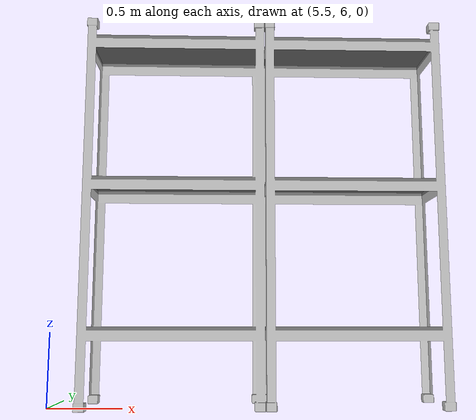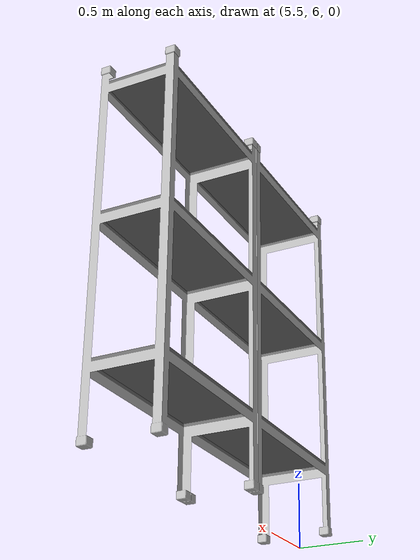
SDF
<?xml version="1.0" ?>
<sdf version="1.5">
  <model name="shelf">
    <pose>0 0 0  0 0 0</pose>
    <static>true</static>
    <link name="body">
      <visual name="visual">
        <geometry>
          <mesh><uri>model://shelf_0_5m/shelf_0_5m.dae</uri></mesh>
        </geometry>
      </visual>
      <collision name="collision">
        <geometry>
          <mesh><uri>model://shelf_0_5m/shelf_0_5m.dae</uri></mesh>
        </geometry>
      </collision>
    </link>
  </model>
</sdf>
